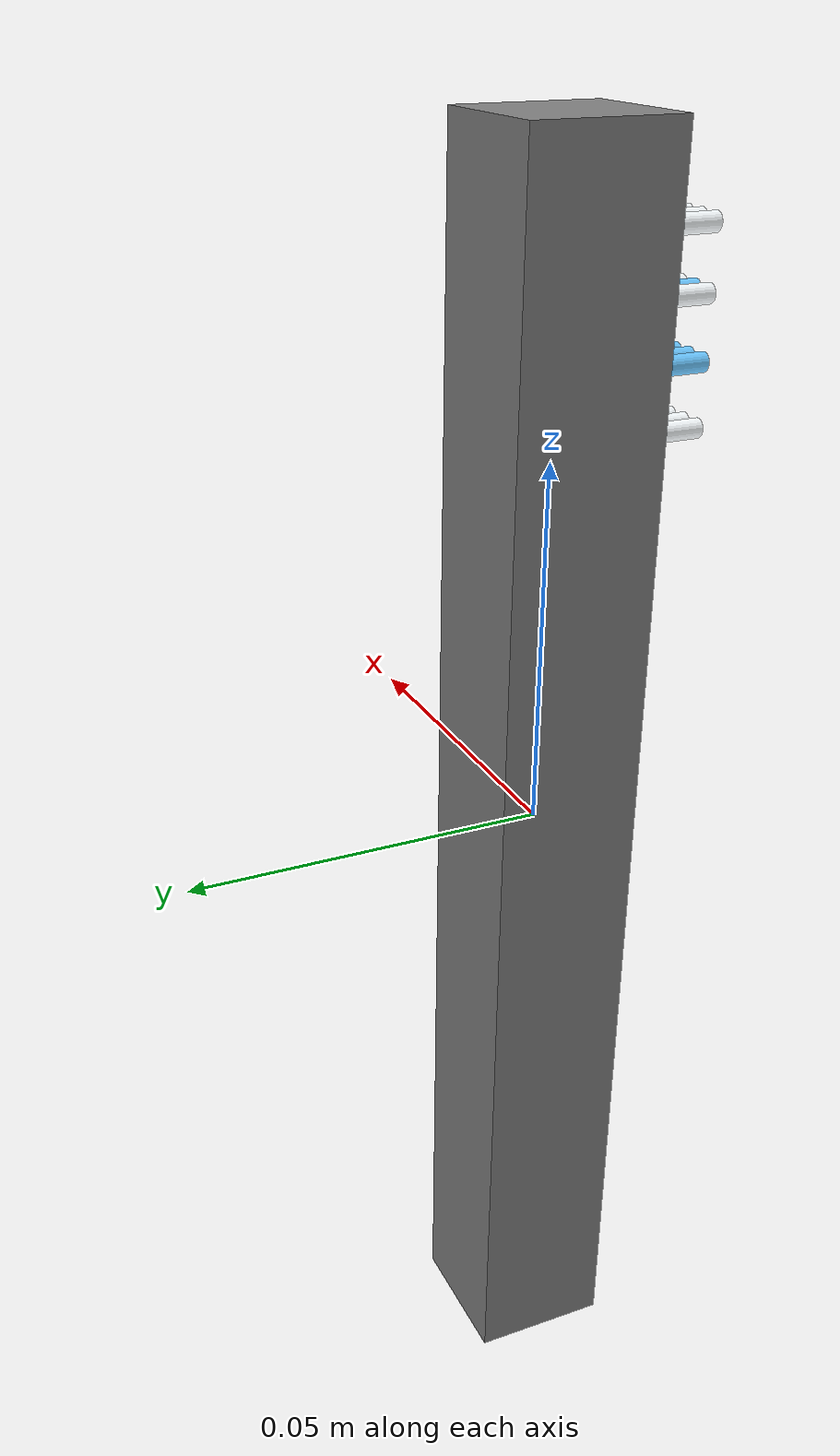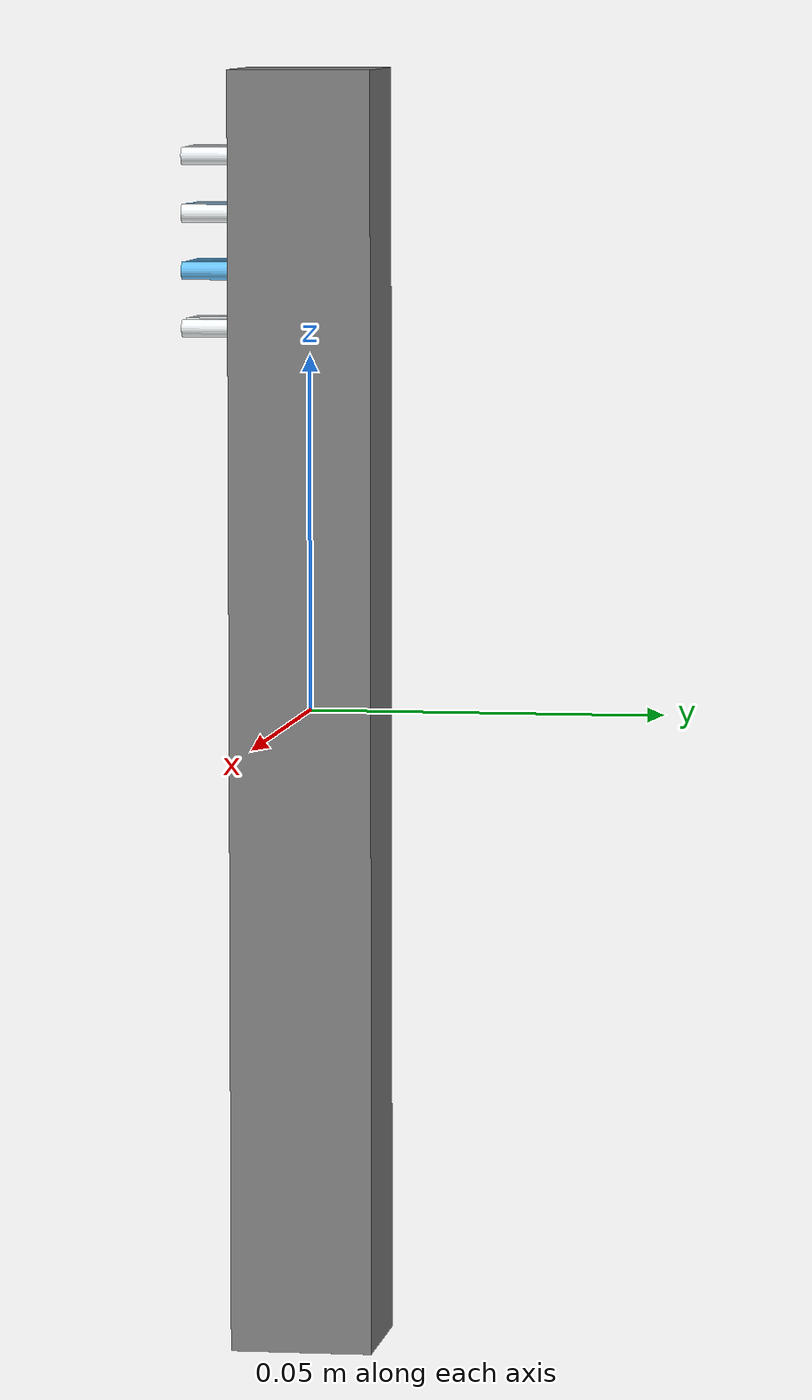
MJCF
<mujoco model="vla82_vla82_058">
  <compiler angle="radian"/>
  <asset>
    <texture name="source_texture" type="2d" file="source_texture.png"/>
    <material name="source_material" texture="source_texture" rgba="1 1 1 1"/>
  </asset>
  <default>
    <default class="visual"><geom contype="0" conaffinity="0" group="1"/></default>
    <default class="collision"><geom contype="1" conaffinity="1" group="0" density="300" friction="0.55 0.005 0.0002" solref="0.02 1" solimp="0.9 0.95 0.001"/></default>
    <default class="region"><geom contype="0" conaffinity="0" group="1" rgba="0 1 0 0" mass="0"/></default>
  </default>
  <worldbody><body><body name="object">
    <geom name="toothbrush_handle_visual" class="visual" type="cylinder" pos="0 0 -0.0285" size="0.0075 0.0535" rgba="0.10 0.43 0.86 1"/>
    <geom name="toothbrush_grip_inlay_visual" class="visual" type="cylinder" pos="0 -0.006 -0.032" size="0.0022 0.024" rgba="0.93 0.97 1.00 1"/>
    <geom name="toothbrush_neck_visual" class="visual" type="cylinder" pos="0 0 0.036" size="0.0045 0.016" rgba="0.91 0.96 1.00 1"/>
    <geom name="toothbrush_head_visual" class="visual" type="ellipsoid" pos="0 0 0.066" size="0.010 0.0055 0.020" rgba="0.12 0.50 0.91 1"/>
    <geom name="toothbrush_bristle_white_0" class="visual" type="cylinder" pos="-0.0060 -0.01075 0.0540" size="0.00125 0.00625" quat="0.7071068 0.7071068 0 0" rgba="0.97 0.99 1.00 1"/>
    <geom name="toothbrush_bristle_white_1" class="visual" type="cylinder" pos="-0.0030 -0.01075 0.0540" size="0.00125 0.00625" quat="0.7071068 0.7071068 0 0" rgba="0.97 0.99 1.00 1"/>
    <geom name="toothbrush_bristle_white_2" class="visual" type="cylinder" pos="0.0000 -0.01075 0.0540" size="0.00125 0.00625" quat="0.7071068 0.7071068 0 0" rgba="0.97 0.99 1.00 1"/>
    <geom name="toothbrush_bristle_white_3" class="visual" type="cylinder" pos="0.0030 -0.01075 0.0540" size="0.00125 0.00625" quat="0.7071068 0.7071068 0 0" rgba="0.97 0.99 1.00 1"/>
    <geom name="toothbrush_bristle_white_4" class="visual" type="cylinder" pos="0.0060 -0.01075 0.0540" size="0.00125 0.00625" quat="0.7071068 0.7071068 0 0" rgba="0.97 0.99 1.00 1"/>
    <geom name="toothbrush_bristle_blue_0" class="visual" type="cylinder" pos="-0.0060 -0.01075 0.0620" size="0.00125 0.00625" quat="0.7071068 0.7071068 0 0" rgba="0.42 0.78 1.00 1"/>
    <geom name="toothbrush_bristle_blue_1" class="visual" type="cylinder" pos="-0.0030 -0.01075 0.0620" size="0.00125 0.00625" quat="0.7071068 0.7071068 0 0" rgba="0.42 0.78 1.00 1"/>
    <geom name="toothbrush_bristle_blue_2" class="visual" type="cylinder" pos="0.0000 -0.01075 0.0620" size="0.00125 0.00625" quat="0.7071068 0.7071068 0 0" rgba="0.42 0.78 1.00 1"/>
    <geom name="toothbrush_bristle_blue_3" class="visual" type="cylinder" pos="0.0030 -0.01075 0.0620" size="0.00125 0.00625" quat="0.7071068 0.7071068 0 0" rgba="0.42 0.78 1.00 1"/>
    <geom name="toothbrush_bristle_blue_4" class="visual" type="cylinder" pos="0.0060 -0.01075 0.0620" size="0.00125 0.00625" quat="0.7071068 0.7071068 0 0" rgba="0.42 0.78 1.00 1"/>
    <geom name="toothbrush_bristle_white_5" class="visual" type="cylinder" pos="-0.0060 -0.01075 0.0700" size="0.00125 0.00625" quat="0.7071068 0.7071068 0 0" rgba="0.97 0.99 1.00 1"/>
    <geom name="toothbrush_bristle_blue_5" class="visual" type="cylinder" pos="-0.0030 -0.01075 0.0700" size="0.00125 0.00625" quat="0.7071068 0.7071068 0 0" rgba="0.42 0.78 1.00 1"/>
    <geom name="toothbrush_bristle_white_6" class="visual" type="cylinder" pos="0.0000 -0.01075 0.0700" size="0.00125 0.00625" quat="0.7071068 0.7071068 0 0" rgba="0.97 0.99 1.00 1"/>
    <geom name="toothbrush_bristle_blue_6" class="visual" type="cylinder" pos="0.0030 -0.01075 0.0700" size="0.00125 0.00625" quat="0.7071068 0.7071068 0 0" rgba="0.42 0.78 1.00 1"/>
    <geom name="toothbrush_bristle_white_7" class="visual" type="cylinder" pos="0.0060 -0.01075 0.0700" size="0.00125 0.00625" quat="0.7071068 0.7071068 0 0" rgba="0.97 0.99 1.00 1"/>
    <geom name="toothbrush_bristle_white_8" class="visual" type="cylinder" pos="-0.0060 -0.01075 0.0780" size="0.00125 0.00625" quat="0.7071068 0.7071068 0 0" rgba="0.97 0.99 1.00 1"/>
    <geom name="toothbrush_bristle_white_9" class="visual" type="cylinder" pos="-0.0030 -0.01075 0.0780" size="0.00125 0.00625" quat="0.7071068 0.7071068 0 0" rgba="0.97 0.99 1.00 1"/>
    <geom name="toothbrush_bristle_white_10" class="visual" type="cylinder" pos="0.0000 -0.01075 0.0780" size="0.00125 0.00625" quat="0.7071068 0.7071068 0 0" rgba="0.97 0.99 1.00 1"/>
    <geom name="toothbrush_bristle_white_11" class="visual" type="cylinder" pos="0.0030 -0.01075 0.0780" size="0.00125 0.00625" quat="0.7071068 0.7071068 0 0" rgba="0.97 0.99 1.00 1"/>
    <geom name="toothbrush_bristle_white_12" class="visual" type="cylinder" pos="0.0060 -0.01075 0.0780" size="0.00125 0.00625" quat="0.7071068 0.7071068 0 0" rgba="0.97 0.99 1.00 1"/>
    <geom name="collision" class="collision" type="box" size="0.010000 0.010000 0.090000"/>
    <geom name="reg_bbox" class="region" type="box" pos="0 0 0" size="0.010000 0.010000 0.090000"/>
  </body></body></worldbody>
  <actuator/>
</mujoco>
